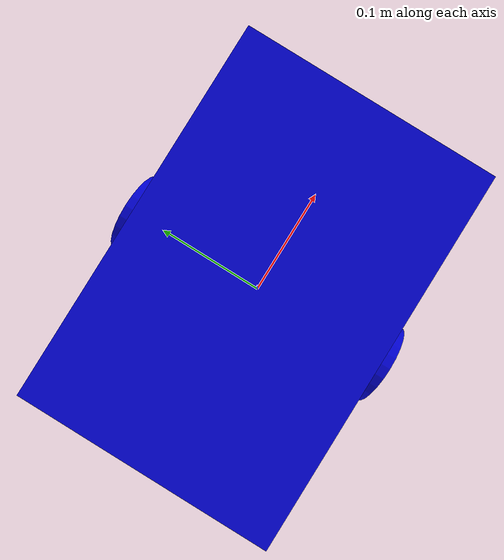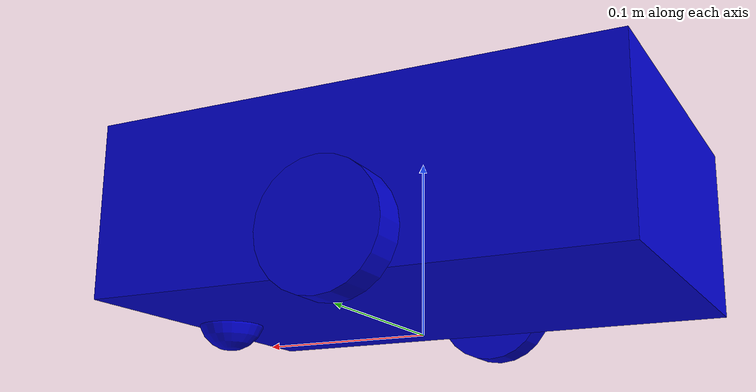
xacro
<?xml version="1.0"?>
<robot xmlns:xacro="http://www.ros.org/wiki/xacro" name="diffdrive">

		<!-- Gövde boyutları -->
		<xacro:property name="base_length" value="0.3"/>
		<xacro:property name="base_width" value="0.2"/>
		<xacro:property name="base_height" value="0.1"/>
		<xacro:property name="base_mass" value="1.0"/>

		<!-- Tekerlek boyutları -->
		<xacro:property name="wheel_radius" value="0.035"/>
		<xacro:property name="wheel_length" value="0.02"/>
		<xacro:property name="wheel_mass" value="0.2"/>
		<xacro:property name="wheel_separation" value="0.22"/>

		<!-- Caster boyutları -->
		<xacro:property name="caster_radius" value="0.02"/>
		<xacro:property name="caster_mass" value="0.1"/>

		<xacro:property name="update_rate" value="50.0"/>

		<!-- Linkler -->
		<link name="base_footprint"/>

		<link name="base_link">

			<visual>
				<origin xyz="0 0 0.03" rpy="0 0 0"/>
				<geometry>
					<box size="${base_length} ${base_width} ${base_height}"/>
				</geometry>
				<material name="blue">
					<color rgba="0 0 0.8 1"/>
				</material>
			</visual>

			<collision>
				<origin xyz="0 0 0.03" rpy="0 0 0"/>
				<geometry>
					<box size="${base_length} ${base_width} ${base_height}"/>
				</geometry>
			</collision>

			<inertial>
				<origin xyz="0 0 0.03" rpy="0 0 0"/>
				<mass value="${base_mass}"/>
				<inertia ixx="0.00417" ixy="0" ixz="0" iyy="0.00833" iyz="0" izz="0.01083"/>
			</inertial>

		</link>

		<link name="left_wheel">

			<visual>
				<origin xyz="0 0 0" rpy="${pi/2} 0 0"/>
				<geometry>
					<cylinder radius="${wheel_radius}" length="${wheel_length}"/>
				</geometry>
				<material name="blue">
					<color rgba="0 0 0.8 1"/>
				</material>
			</visual>

			<collision>
				<origin xyz="0 0 0" rpy="${pi/2} 0 0"/>
				<geometry>
					<cylinder radius="${wheel_radius}" length="${wheel_length}"/>
				</geometry>
			</collision>

			<inertial>
				<origin xyz="0 0 0" rpy="0 0 0"/>
				<mass value="${wheel_mass}"/>
				<inertia ixx="0.0000673" ixy="0" ixz="0" iyy="0.0000673" iyz="0" izz="0.0001225"/>
			</inertial>

		</link>

		<link name="right_wheel">

			<visual>
				<origin xyz="0 0 0" rpy="${pi/2} 0 0"/>
				<geometry>
					<cylinder radius="${wheel_radius}" length="${wheel_length}"/>
				</geometry>
				<material name="blue">
					<color rgba="0 0 0.8 1"/>
				</material>
			</visual>

			<collision>
				<origin xyz="0 0 0" rpy="${pi/2} 0 0"/>
				<geometry>
					<cylinder radius="${wheel_radius}" length="${wheel_length}"/>
				</geometry>
			</collision>

			<inertial>
				<origin xyz="0 0 0" rpy="0 0 0"/>
				<mass value="${wheel_mass}"/>
				<inertia ixx="0.0000673" ixy="0" ixz="0" iyy="0.0000673" iyz="0" izz="0.0001225"/>
			</inertial>

		</link>

		<link name="caster_link">

			<visual>
				<origin xyz="0 0 0" rpy="0 0 0"/>
				<geometry>
					<sphere radius="${caster_radius}"/>
				</geometry>
				<material name="blue">
					<color rgba="0 0 0.8 1"/>
				</material>
			</visual>

			<collision>
				<origin xyz="0 0 0" rpy="0 0 0"/>
				<geometry>
					<sphere radius="${caster_radius}"/>
				</geometry>
			</collision>

			<inertial>
				<origin xyz="0 0 0" rpy="0 0 0"/>
				<mass value="${caster_mass}"/>
				<inertia ixx="0.000016" ixy="0" ixz="0" iyy="0.000016" iyz="0" izz="0.000016"/>
			</inertial>

		</link>

		<!-- Jointler -->
		<joint name="base_footprint_joint" type="fixed">

			<parent link="base_footprint"/>
			<child link="base_link"/>
			<origin xyz="0 0 ${wheel_radius}" rpy="0 0 0"/>

		</joint>

		<joint name="left_wheel_joint" type="continuous">

			<parent link="base_link"/>
			<child link="left_wheel"/>
			<origin xyz="0 ${wheel_separation/2} 0" rpy="0 0 0"/>
			<axis xyz="0 1 0"/>

		</joint>

		<joint name="right_wheel_joint" type="continuous">

			<parent link="base_link"/>
			<child link="right_wheel"/>
			<origin xyz="0 ${-wheel_separation/2} 0" rpy="0 0 0"/>
			<axis xyz="0 1 0"/>

		</joint>

		<joint name="caster_joint" type="fixed">

			<parent link="base_link"/>
			<child link="caster_link"/>
			<origin xyz="${base_length/2 - caster_radius} 0 ${-(wheel_radius - caster_radius)}" rpy="0 0 0"/>

		</joint>

		<!-- Gazebo Tagleri -->
		<gazebo reference="base_link">
			<material>Gazebo/Blue</material>
		</gazebo>

		<gazebo reference="left_wheel">
			<material>Gazebo/Black</material>
		</gazebo>

		<gazebo reference="right_wheel">
			<material>Gazebo/Black</material>
		</gazebo>

		<gazebo reference="caster_link">
			<mu1>0</mu1>
			<mu2>0</mu2>
			<material>Gazebo/Grey</material>
		</gazebo>

		<!-- Gazebo Differential Drive Plugini -->
		<gazebo>
			<plugin name="diff_drive" filename="libgazebo_ros_diff_drive.so">
				<ros>
					<namespace>/</namespace>
				</ros>
				<left_joint>left_wheel_joint</left_joint>
				<right_joint>right_wheel_joint</right_joint>
				<wheel_separation>${wheel_separation}</wheel_separation>
				<wheel_diameter>${wheel_radius * 2}</wheel_diameter>
				<command_topic>cmd_vel</command_topic>
				<publish_odom>true</publish_odom>
				<publish_odom_tf>true</publish_odom_tf>
				<odometry_frame>odom</odometry_frame>
				<robot_base_frame>base_footprint</robot_base_frame>
				<update_rate>${update_rate}</update_rate>
			</plugin>
		</gazebo>

</robot>
